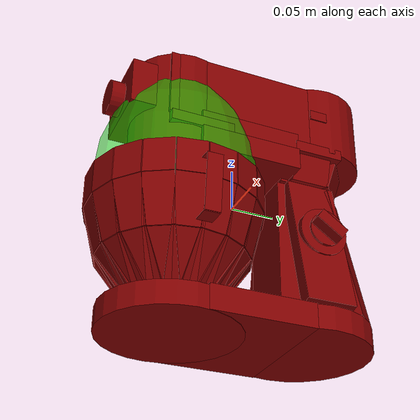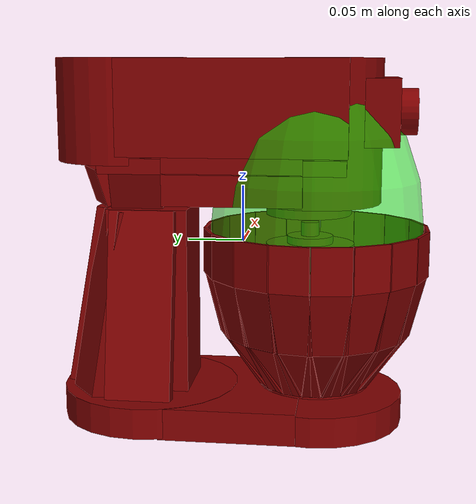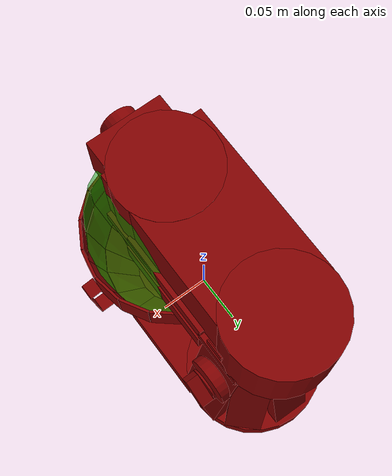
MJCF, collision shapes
<?xml version='1.0' encoding='UTF-8'?>
<mujoco model="model">
  <option timestep="0.002" gravity="0.0 0.0 -9.81"/>
  <compiler angle="radian"/>
  <asset>
    <mesh file="visuals/blender.obj" name="blender_vis"/>
    <mesh file="visuals/bowl.obj" name="bowl_vis"/>
    <mesh file="visuals/button_head_lock.obj" name="button_head_lock_vis"/>
    <mesh file="visuals/head.obj" name="head_vis"/>
    <mesh file="visuals/knob_speed.obj" name="knob_speed_vis"/>
    <mesh file="visuals/Body001.obj" name="Body001_vis"/>
    <texture file="visuals/T_BC001.png" name="Body001_material" type="2d"/>
    <material name="Body001_material" rgba="1 1 1 1.0" texture="Body001_material" shininess="0.4472135901451111" specular="0.3103448502657381"/>
    <texture file="visuals/T_BC001.png" name="bowl_material" type="2d"/>
    <material name="bowl_material" rgba="1 1 1 1.0" texture="bowl_material" shininess="1" specular="1"/>
    <texture file="visuals/T_BC001.png" name="head_material" type="2d"/>
    <material name="head_material" rgba="1 1 1 1.0" texture="head_material" shininess="0.4472135901451111" specular="0.3103448502657381"/>
    <texture file="visuals/T_BC001.png" name="blender_material" type="2d"/>
    <material name="blender_material" rgba="1 1 1 1.0" texture="blender_material" shininess="1" specular="1"/>
    <texture file="visuals/T_BC001.png" name="button_head_lock_material" type="2d"/>
    <material name="button_head_lock_material" rgba="1 1 1 1.0" texture="button_head_lock_material" shininess="0.4472135901451111" specular="0.3103448502657381"/>
    <texture file="visuals/T_BC001.png" name="knob_speed_material" type="2d"/>
    <material name="knob_speed_material" rgba="1 1 1 1.0" texture="knob_speed_material" shininess="0.4472135901451111" specular="0.3103448502657381"/>
  </asset>
  <default>
    <default class="visual">
      <geom conaffinity="0" contype="0" group="1" type="mesh"/>
    </default>
    <default class="collision">
      <geom group="0" rgba="0.5 0 0 0.5"/>
    </default>
    <default class="spawn">
      <geom group="0" rgba="1 1 1 0.5" contype="0" conaffinity="0"/>
      <site group="0" rgba="1 1 1 0.5"/>
    </default>
    <default class="region">
      <geom group="1" conaffinity="0" contype="0" rgba="0 1 0 0"/>
    </default>
  </default>
  <worldbody>
    <body>
      <body name="object">
        <geom mesh="Body001_vis" type="mesh" solimp="0.998 0.998 0.001" solref="0.001 1" friction="0.95 0.3 0.1" class="visual" material="Body001_material"/>
        <geom type="cylinder" pos="-0.007960788905620575 -0.06684844195842743 -0.14681977033615112" size="0.07800706475973129 0.01318493764847517" quat="1.0 0.0 0.0 0.0" class="collision"/>
        <geom type="cylinder" pos="-0.010320175439119339 0.08387935161590576 -0.14481329917907715" size="0.07943037897348404 0.013425509445369244" quat="1.0 0.0 0.0 0.0" class="collision"/>
        <geom type="box" pos="-0.008257637731730938 0.004917993675917387 -0.14560163021087646" size="0.07702770084142685 0.05912737920880318 0.013953768648207188" quat="1.0 0.0 0.0 0.0" class="collision"/>
        <geom type="box" pos="-0.007382966578006744 0.08040105551481247 -0.049021538347005844" size="0.03387362137436867 0.03569832071661949 0.08175280690193176" quat="1.0 0.0 0.0 0.0" class="collision"/>
        <geom type="box" pos="0.043997276574373245 0.08232957124710083 -0.049021538347005844" size="0.007892224937677383 0.0284084752202034 0.08175291121006012" quat="0.9942047595977783 0.0 -0.10750293731689453 0.0" class="collision"/>
        <geom type="box" pos="-0.0424405038356781 0.11863749474287033 -0.049416765570640564" size="0.007892224006354809 0.019647125154733658 0.08175291121006012" quat="0.8977482914924622 0.04135078191757202 0.08289728313684464 -0.4306578040122986" class="collision"/>
        <geom type="box" pos="-0.008531877771019936 0.13365358114242554 -0.04846421256661415" size="0.007801813073456287 0.021083414554595947 0.0817185640335083" quat="0.6972964406013489 0.06290378421545029 0.0665663555264473 -0.7109076380729675" class="collision"/>
        <geom type="box" pos="-0.058235131204128265 0.08232957124710083 -0.04805427044630051" size="0.007892224937677383 0.0284084752202034 0.08175291121006012" quat="0.9954656958580017 0.0 0.09512124955654144 0.0" class="collision"/>
        <geom type="box" pos="0.029251210391521454 0.12137157469987869 -0.052789293229579926" size="0.007801810745149851 0.02074163220822811 0.08171853423118591" quat="0.38455402851104736 0.0907943993806839 0.026380907744169235 -0.9182475805282593" class="collision"/>
        <geom type="cylinder" pos="0.04883949086070061 0.08365180343389511 -0.03870346397161484" size="0.02780371904373169 0.008603918366134167" quat="0.7071068286895752 -4.750302551315144e-08 0.7071067094802856 4.7503014855010406e-08" class="collision"/>
        <body name="bowl">
          <geom mesh="bowl_vis" type="mesh" solimp="0.998 0.998 0.001" solref="0.001 1" friction="0.95 0.3 0.1" class="visual" material="bowl_material"/>
          <geom type="cylinder" pos="-0.007204422727227211 -0.06600315123796463 -0.12682124972343445" size="0.04953110218048096 0.0009693617466837168" quat="1.0 0.0 0.0 0.0" class="collision"/>
          <geom type="box" pos="-0.007204423658549786 -0.16291368007659912 -0.004126019775867462" size="0.016662562265992165 0.0014463496627286077 0.019679084420204163" quat="1.0 0.0 0.0 0.0" class="collision"/>
          <geom type="box" pos="-0.007204422727227211 -0.1549758017063141 -0.050037600100040436" size="0.016662564128637314 0.0014463495463132858 0.028331073001027107" quat="0.9920241832733154 0.12604783475399017 2.798823836088293e-17 -4.290578964756348e-24" class="collision"/>
          <geom type="box" pos="-0.007204422727227211 -0.1300046741962433 -0.10131621360778809" size="0.016662564128637314 0.001446353504434228 0.029418475925922394" quat="0.9507254958152771 0.3100338578224182 6.884135870845198e-17 -5.768733512754544e-24" class="collision"/>
          <geom type="box" pos="-0.040349774062633514 -0.15706926584243774 -0.004126019775867462" size="0.016662562265992165 0.0014463495463132858 0.019679084420204163" quat="0.9848077297210693 0.0 0.0 -0.17364822328090668" class="collision"/>
          <geom type="box" pos="-0.03763485699892044 -0.14961010217666626 -0.05003759264945984" size="0.016662564128637314 0.0014463495463132858 0.028331076726317406" quat="0.9769530892372131 0.12413285672664642 -0.021887971088290215 -0.17226320505142212" class="collision"/>
          <geom type="box" pos="-0.029094234108924866 -0.1261449158191681 -0.10131621360778809" size="0.016662562265992165 0.0014463536208495498 0.029418474063277245" quat="0.9362818598747253 0.3053237199783325 -0.05383680388331413 -0.16509173810482025" class="collision"/>
          <geom type="box" pos="-0.06949730217456818 -0.14024092257022858 -0.004126019775867462" size="0.016662562265992165 0.0014463496627286077 0.019679084420204163" quat="0.9396926164627075 0.0 0.0 -0.3420201539993286" class="collision"/>
          <geom type="box" pos="-0.06439493596553802 -0.13416016101837158 -0.050037600100040436" size="0.016662564128637314 0.0014463495463132858 0.028331073001027107" quat="0.9321978092193604 0.1184462234377861 -0.04311089217662811 -0.3392921984195709" class="collision"/>
          <geom type="box" pos="-0.04834381490945816 -0.1150311678647995 -0.10131621360778809" size="0.016662564128637314 0.001446353504434228 0.029418475925922394" quat="0.8933897614479065 0.2913365364074707 -0.10603781044483185 -0.3251672387123108" class="collision"/>
          <geom type="box" pos="-0.09113139659166336 -0.11445841938257217 -0.004126019775867462" size="0.016662562265992165 0.0014463496627286077 0.019679084420204163" quat="0.866025447845459 0.0 0.0 -0.4999999701976776" class="collision"/>
          <geom type="box" pos="-0.08425699919462204 -0.11048948764801025 -0.05003759264945984" size="0.016662564128637314 0.0014463495463132858 0.028331076726317406" quat="0.8591181635856628 0.10916060209274292 -0.0630238950252533 -0.49601203203201294" class="collision"/>
          <geom type="box" pos="-0.06263137608766556 -0.09800392389297485 -0.10131621360778809" size="0.016662564128637314 0.001446353504434228 0.029418475925922394" quat="0.8233524560928345 0.26849719882011414 -0.1550169289112091 -0.47536277770996094" class="collision"/>
          <geom type="box" pos="-0.10264264792203903 -0.0828314870595932 -0.004126019775867462" size="0.016662560403347015 0.0014463495463132858 0.019679084420204163" quat="0.7660444378852844 0.0 0.0 -0.6427876353263855" class="collision"/>
          <geom type="box" pos="-0.094825379550457 -0.08145309239625931 -0.050037600100040436" size="0.016662560403347015 0.0014463497791439295 0.028331073001027107" quat="0.7599346041679382 0.09655822813510895 -0.0810219794511795 -0.637660801410675" class="collision"/>
          <geom type="box" pos="-0.07023362815380096 -0.07711690664291382 -0.10131621360778809" size="0.016662562265992165 0.001446353504434228 0.029418475925922394" quat="0.7282979488372803 0.23749971389770508 -0.19928599894046783 -0.6111146211624146" class="collision"/>
          <geom type="box" pos="-0.10264266282320023 -0.049174822866916656 -0.004126019775867462" size="0.016662560403347015 0.0014463495463132858 0.019679084420204163" quat="0.6427876353263855 0.0 0.0 -0.7660444378852844" class="collision"/>
          <geom type="box" pos="-0.094825379550457 -0.05055322125554085 -0.050037600100040436" size="0.016662562265992165 0.0014463495463132858 0.028331073001027107" quat="0.6376608610153198 0.0810219794511795 -0.09655825048685074 -0.7599346041679382" class="collision"/>
          <geom type="box" pos="-0.07023363560438156 -0.05488940700888634 -0.10131621360778809" size="0.016662564128637314 0.001446353504434228 0.029418475925922394" quat="0.6111146211624146 0.19928596913814545 -0.23749974370002747 -0.7282979488372803" class="collision"/>
          <geom type="box" pos="-0.09113139659166336 -0.017547883093357086 -0.004126019775867462" size="0.016662562265992165 0.0014463496627286077 0.019679084420204163" quat="0.4999999701976776 0.0 0.0 -0.866025447845459" class="collision"/>
          <geom type="box" pos="-0.08425699919462204 -0.021516822278499603 -0.05003759264945984" size="0.016662564128637314 0.0014463495463132858 0.028331076726317406" quat="0.4960120618343353 0.06302390247583389 -0.10916060209274292 -0.8591181635856628" class="collision"/>
          <geom type="box" pos="-0.06263136863708496 -0.034002386033535004 -0.10131620615720749" size="0.016662564128637314 0.001446353504434228 0.029418475925922394" quat="0.47536274790763855 0.15501689910888672 -0.26849716901779175 -0.8233524560928345" class="collision"/>
          <geom type="box" pos="-0.06949730962514877 0.008234620094299316 -0.004126019775867462" size="0.016662562265992165 0.0014463496627286077 0.019679084420204163" quat="0.3420201539993286 0.0 0.0 -0.9396926164627075" class="collision"/>
          <geom type="box" pos="-0.06439494341611862 0.002153851091861725 -0.05003758519887924" size="0.016662564128637314 0.0014463495463132858 0.028331076726317406" quat="0.3392922580242157 0.04311088100075722 -0.11844616383314133 -0.9321978092193604" class="collision"/>
          <geom type="box" pos="-0.04834381490945816 -0.01697513461112976 -0.10131620615720749" size="0.016662564128637314 0.001446353504434228 0.029418475925922394" quat="0.32516729831695557 0.10603781044483185 -0.2913365364074707 -0.8933897614479065" class="collision"/>
          <geom type="box" pos="-0.04034978151321411 0.025062955915927887 -0.004126019775867462" size="0.016662562265992165 0.0014463496627286077 0.019679084420204163" quat="0.17364822328090668 0.0 0.0 -0.9848077297210693" class="collision"/>
          <geom type="box" pos="-0.037634868174791336 0.017603792250156403 -0.05003759264945984" size="0.016662564128637314 0.0014463495463132858 0.028331076726317406" quat="0.1722632348537445 0.021887974813580513 -0.12413285672664642 -0.9769530892372131" class="collision"/>
          <geom type="box" pos="-0.029094241559505463 -0.005861387588083744 -0.10131620615720749" size="0.016662564128637314 0.0014463536208495498 0.029418475925922394" quat="0.16509179770946503 0.05383681133389473 -0.30532369017601013 -0.9362818598747253" class="collision"/>
          <geom type="box" pos="-0.007204413414001465 0.03090737760066986 -0.004126019775867462" size="0.016662562265992165 0.0014463496627286077 0.019679084420204163" quat="1.9470718370939721e-07 0.0 0.0 1.0" class="collision"/>
          <geom type="box" pos="-0.007204415276646614 0.022969499230384827 -0.05003758519887924" size="0.016662564128637314 0.0014463495463132858 0.028331076726317406" quat="1.9315423571697465e-07 2.4542408993966092e-08 0.1260477751493454 0.9920241832733154" class="collision"/>
          <geom type="box" pos="-0.007204417139291763 -0.0020016219932585955 -0.10131621360778809" size="0.016662564128637314 0.001446353504434228 0.029418475925922394" quat="1.8511309463065118e-07 6.036582078650099e-08 0.3100338578224182 0.9507254958152771" class="collision"/>
          <geom type="box" pos="0.025940952822566032 0.02506294846534729 -0.004126019775867462" size="0.016662562265992165 0.0014463496627286077 0.019679084420204163" quat="0.17364844679832458 0.0 0.0 0.9848077297210693" class="collision"/>
          <geom type="box" pos="0.023226039484143257 0.017603784799575806 -0.05003759264945984" size="0.016662564128637314 0.0014463495463132858 0.028331074863672256" quat="0.17226333916187286 0.021887999027967453 0.12413287907838821 0.9769530892372131" class="collision"/>
          <geom type="box" pos="0.014685405418276787 -0.005861395038664341 -0.10131620615720749" size="0.016662564128637314 0.001446353504434228 0.029418474063277245" quat="0.16509202122688293 0.0538368858397007 0.30532366037368774 0.9362818598747253" class="collision"/>
          <geom type="box" pos="0.05508847534656525 0.008234605193138123 -0.004126019775867462" size="0.016662562265992165 0.0014463495463132858 0.019679084420204163" quat="0.34202027320861816 0.0 0.0 0.9396925568580627" class="collision"/>
          <geom type="box" pos="0.049986109137535095 0.002153851091861725 -0.050037600100040436" size="0.016662564128637314 0.0014463495463132858 0.028331074863672256" quat="0.33929237723350525 0.0431109182536602 0.1184462457895279 0.9321977496147156" class="collision"/>
          <geom type="box" pos="0.033934980630874634 -0.01697513461112976 -0.10131621360778809" size="0.016662564128637314 0.0014463536208495498 0.029418475925922394" quat="0.32516738772392273 0.10603785514831543 0.2913365066051483 0.8933897018432617" class="collision"/>
          <geom type="box" pos="0.07672256231307983 -0.01754789799451828 -0.004126019775867462" size="0.016662562265992165 0.0014463496627286077 0.019679084420204163" quat="0.5000000596046448 0.0 0.0 0.8660253882408142" class="collision"/>
          <geom type="box" pos="0.06984815746545792 -0.021516837179660797 -0.05003758519887924" size="0.016662564128637314 0.0014463495463132858 0.028331076726317406" quat="0.4960121512413025 0.06302390247583389 0.10916056483983994 0.8591181039810181" class="collision"/>
          <geom type="box" pos="0.048222534358501434 -0.0340023934841156 -0.10131620615720749" size="0.016662564128637314 0.0014463536208495498 0.029418475925922394" quat="0.4753628373146057 0.15501689910888672 0.2684970796108246 0.8233524560928345" class="collision"/>
          <geom type="box" pos="0.0882338210940361 -0.049174822866916656 -0.004126019775867462" size="0.016662560403347015 0.0014463495463132858 0.019679084420204163" quat="0.6427876353263855 0.0 0.0 0.7660444378852844" class="collision"/>
          <geom type="box" pos="0.08041652292013168 -0.05055321753025055 -0.05003758519887924" size="0.016662562265992165 0.0014463495463132858 0.028331076726317406" quat="0.6376608610153198 0.08102192729711533 0.09655817598104477 0.7599346041679382" class="collision"/>
          <geom type="box" pos="0.055824778974056244 -0.05488940328359604 -0.10131620615720749" size="0.016662564128637314 0.0014463536208495498 0.029418475925922394" quat="0.6111146211624146 0.1992858499288559 0.23749960958957672 0.728298008441925" class="collision"/>
          <geom type="box" pos="0.08823380619287491 -0.0828314870595932 -0.004126019775867462" size="0.016662560403347015 0.0014463495463132858 0.019679084420204163" quat="0.7660444378852844 0.0 0.0 0.6427876353263855" class="collision"/>
          <geom type="box" pos="0.08041653782129288 -0.08145308494567871 -0.05003758519887924" size="0.016662562265992165 0.0014463495463132858 0.028331076726317406" quat="0.7599346041679382 0.09655820578336716 0.08102195709943771 0.6376608610153198" class="collision"/>
          <geom type="box" pos="0.055824778974056244 -0.07711689919233322 -0.10131620615720749" size="0.016662562265992165 0.0014463536208495498 0.029418475925922394" quat="0.7282981276512146 0.2374996691942215 0.19928580522537231 0.6111144423484802" class="collision"/>
          <geom type="box" pos="0.07672253996133804 -0.11445844918489456 -0.004126019775867462" size="0.016662562265992165 0.0014463496627286077 0.019679084420204163" quat="0.8660256266593933 0.0 0.0 0.49999961256980896" class="collision"/>
          <geom type="box" pos="0.06984813511371613 -0.11048950254917145 -0.05003758519887924" size="0.016662564128637314 0.0014463495463132858 0.028331076726317406" quat="0.8591182827949524 0.10916059464216232 0.06302385777235031 0.49601179361343384" class="collision"/>
          <geom type="box" pos="0.04822251945734024 -0.09800393879413605 -0.10131620615720749" size="0.016662564128637314 0.001446353504434228 0.029418475925922394" quat="0.823352575302124 0.26849716901779175 0.15501683950424194 0.4753625690937042" class="collision"/>
          <geom type="box" pos="0.05508843809366226 -0.14024093747138977 -0.004126019775867462" size="0.016662562265992165 0.0014463496627286077 0.019679084420204163" quat="0.9396926760673523 0.0 0.0 0.34202003479003906" class="collision"/>
          <geom type="box" pos="0.04998607188463211 -0.13416016101837158 -0.05003758519887924" size="0.016662564128637314 0.001446349429897964 0.028331076726317406" quat="0.9321978092193604 0.11844618618488312 0.043110866099596024 0.33929213881492615" class="collision"/>
          <geom type="box" pos="0.033934950828552246 -0.1150311827659607 -0.10131620615720749" size="0.016662564128637314 0.001446353504434228 0.029418475925922394" quat="0.8933898210525513 0.2913364768028259 0.10603776574134827 0.325167179107666" class="collision"/>
          <geom type="box" pos="0.025940904393792152 -0.15706926584243774 -0.004126019775867462" size="0.016662562265992165 0.0014463496627286077 0.019679084420204163" quat="0.9848077893257141 0.0 0.0 0.17364807426929474" class="collision"/>
          <geom type="box" pos="0.023225996643304825 -0.14961010217666626 -0.05003759264945984" size="0.016662564128637314 0.0014463495463132858 0.028331076726317406" quat="0.9769530892372131 0.12413285672664642 0.02188795991241932 0.17226308584213257" class="collision"/>
          <geom type="box" pos="0.014685375615954399 -0.1261449158191681 -0.10131621360778809" size="0.016662565991282463 0.001446353504434228 0.029418475925922394" quat="0.9362818598747253 0.3053237497806549 0.05383677780628204 0.1650916188955307" class="collision"/>
          <geom type="box" pos="0.10360876470804214 -0.06524024158716202 -0.03953292965888977" size="0.00870614591985941 0.0006165413651615381 0.031997792422771454" quat="0.7063024044036865 -0.033717237412929535 0.03371724113821983 -0.7063024640083313" class="collision"/>
          <geom type="box" pos="0.0994282215833664 -0.06524024903774261 -0.006605442613363266" size="0.00870614591985941 0.00061654148157686 0.0070522683672606945" quat="0.4608078896999359 -0.536335825920105 0.5363358855247498 -0.460807740688324" class="collision"/>
          <geom type="box" pos="0.08988333493471146 -0.06524024158716202 -0.07114682346582413" size="0.00870614591985941 0.0006165415397845209 0.010630435310304165" quat="0.4873865246772766 -0.5123030543327332 0.5123031139373779 -0.4873863756656647" class="collision"/>
          <geom name="reg_bowl" type="ellipsoid" pos="-0.007204422727227211 -0.06600315123796463 0.014971382915973663" size="0.0923565924167633 0.09411651641130447 0.13943728804588318" rgba="0 1 0 0.5" class="region"/>
        </body>
        <body name="head">
          <joint axis="-1.0 0.0 0.0" pos="-0.007897231727838516 0.1340997964143753 0.028583301231265068" limited="true" name="head_joint" range="0.0 1.5707963267948966" type="hinge" damping="1" frictionloss="1" armature=".01" stiffness="0.05"/>
          <geom mesh="head_vis" type="mesh" solimp="0.998 0.998 0.001" solref="0.001 1" friction="0.95 0.3 0.1" class="visual" material="head_material"/>
          <geom type="box" pos="-0.011067301034927368 0.003330816514790058 0.12151413410902023" size="0.05580741539597511 0.09693325310945511 0.04065350815653801" quat="1.0 0.0 0.0 0.0" class="collision"/>
          <geom type="cylinder" pos="-0.007960788905620575 0.10533460974693298 0.11810024827718735" size="0.05888476222753525 0.044684380292892456" quat="1.0 0.0 0.0 0.0" class="collision"/>
          <geom type="cylinder" pos="-0.007960788905620575 -0.06684844195842743 0.10018188506364822" size="0.05546166002750397 0.062283482402563095" quat="1.0 0.0 0.0 0.0" class="collision"/>
          <geom type="box" pos="-0.0073587168008089066 0.0022604581899940968 0.05343588441610336" size="0.05951599404215813 0.05912737920880318 0.013261141255497932" quat="1.0 0.0 0.0 0.0" class="collision"/>
          <geom type="box" pos="-0.008372576907277107 0.002260460751131177 0.07779663056135178" size="0.058369483798742294 0.0591273196041584 0.010310162790119648" quat="1.0 0.0 0.0 0.0" class="collision"/>
          <geom type="cylinder" pos="-0.007960788905620575 -0.05937452241778374 0.03466175124049187" size="0.03752787783741951 0.007284394931048155" quat="1.0 0.0 0.0 0.0" class="collision"/>
          <geom type="box" pos="-0.0073587168008089066 -0.12096917629241943 0.11764436960220337" size="0.04213531315326691 0.01460898295044899 0.028308404609560966" quat="1.0 0.0 0.0 0.0" class="collision"/>
          <geom type="cylinder" pos="-0.007960788905620575 -0.14331141114234924 0.11712028831243515" size="0.02004116401076317 0.007942813448607922" quat="0.7071068286895752 -0.7071067690849304 -1.5700922994638892e-16 5.926933650839829e-24" class="collision"/>
          <geom type="box" pos="-0.0073587168008089066 0.08141055703163147 0.05414300039410591" size="0.03236949443817139 0.030743412673473358 0.017058735713362694" quat="1.0 0.0 0.0 0.0" class="collision"/>
          <geom type="cylinder" pos="-0.007960788905620575 -0.060793690383434296 0.025373069569468498" size="0.011341221630573273 0.0027488265186548233" quat="1.0 0.0 0.0 0.0" class="collision"/>
          <geom type="box" pos="0.03316013887524605 0.08265221118927002 0.05414300411939621" size="0.007447761483490467 0.022549008950591087 0.017058733850717545" quat="0.9883102178573608 0.0 0.1524564027786255 0.0" class="collision"/>
          <geom type="box" pos="0.017389897257089615 0.11667884886264801 0.05414300411939621" size="0.007447761949151754 0.022549008950591087 0.017058733850717545" quat="0.8785291910171509 -0.069834403693676 0.13552159070968628 0.452706903219223" class="collision"/>
          <geom type="box" pos="-0.025258183479309082 0.12136368453502655 0.05414300411939621" size="0.007447761483490467 0.022549008950591087 0.017058733850717545" quat="0.5110111832618713 -0.1304953247308731 0.07882841676473618 0.8459460139274597" class="collision"/>
          <geom type="box" pos="-0.048665136098861694 0.08540646731853485 0.05414300411939621" size="0.007447761483490467 0.022549008950591087 0.017058733850717545" quat="0.008073309436440468 0.15245124697685242 0.0012453856179490685 -0.9882772564888" class="collision"/>
          <geom type="box" pos="-0.0073587168008089066 -0.05575251206755638 0.072968028485775" size="0.05736022815108299 0.03685789555311203 0.006563880015164614" quat="1.0 0.0 0.0 0.0" class="collision"/>
          <geom type="box" pos="-0.006925827823579311 0.0878300815820694 0.072968028485775" size="0.05736023187637329 0.029091166332364082 0.006563881412148476" quat="1.0 0.0 0.0 0.0" class="collision"/>
          <body name="blender">
            <joint axis="0.0 0.0 1.0" pos="-0.0068615153431892395 -0.06079823896288872 -0.0263864453881979" limited="false" name="blender_joint" range="0 360" type="hinge" damping="1" frictionloss="1" armature=".01" stiffness="0.05"/>
            <geom mesh="blender_vis" type="mesh" solimp="0.998 0.998 0.001" solref="0.001 1" friction="0.95 0.3 0.1" class="visual" material="blender_material"/>
            <geom type="cylinder" pos="-0.0070564039051532745 -0.06078915297985077 -0.033096544444561005" size="0.03922392427921295 0.03408218175172806" quat="1.0 0.0 0.0 0.0" class="collision"/>
            <geom type="cylinder" pos="-0.0070564039051532745 -0.06078915297985077 0.003046870231628418" size="0.020283741876482964 0.004735451657325029" quat="1.0 0.0 0.0 0.0" class="collision"/>
            <geom type="cylinder" pos="-0.0070564039051532745 -0.06078915297985077 0.013130497187376022" size="0.007982873357832432 0.006899514701217413" quat="1.0 0.0 0.0 0.0" class="collision"/>
          </body>
          <body name="button_head_lock">
            <joint axis="-1.0 0.0 0.0" pos="0.05169231817126274 0.0877847969532013 0.11918672919273376" limited="true" name="button_head_lock_joint" range="0.0 0.0015" type="slide" damping="1" frictionloss="1" armature=".01" stiffness="0.05"/>
            <geom mesh="button_head_lock_vis" type="mesh" solimp="0.998 0.998 0.001" solref="0.001 1" friction="0.95 0.3 0.1" class="visual" material="button_head_lock_material"/>
            <geom class="collision" type="box" pos="0.05301794409751892 0.0877847969532013 0.11918672919273376" size="0.0006960639148019254 0.010689658112823963 0.006097411271184683" quat="1.0 0.0 0.0 0.0" name="button_head_lock_main"/>
          </body>
        </body>
        <body name="knob_speed">
          <joint axis="-1.0 0.0 0.0" pos="0.06816989183425903 0.08365180343389511 -0.03870345652103424" limited="true" name="knob_speed_joint" range="0.0 4.886921905584122" type="hinge" damping="0.05" armature="0.001"/>
          <geom mesh="knob_speed_vis" type="mesh" solimp="0.998 0.998 0.001" solref="0.001 1" friction="0.95 0.3 0.1" class="visual" material="knob_speed_material"/>
          <geom type="cylinder" pos="0.06144864112138748 0.08365180343389511 -0.03870346024632454" size="0.01900840550661087 0.0013273167423903942" quat="0.70710688829422 -4.7503014855010406e-08 0.7071066498756409 4.750300064415569e-08" class="collision"/>
          <geom class="collision" type="box" pos="0.07016842067241669 0.08365180343389511 -0.03870345652103424" size="0.007372028194367886 0.01744014210999012 0.0067107356153428555" quat="0.9537169337272644 -0.30070576071739197 -6.67700918371743e-17 6.66540330472668e-25" name="knob_speed_main"/>
        </body>
        <geom class="region" name="reg_main" type="box" pos="-0.007787708193063736 0.00717298686504364 0.0" size="0.07875606215000153 0.15929810500144959 0.16379304027557373"/>
      </body>
    </body>
  </worldbody>
  <actuator>
    <motor name="head_joint_actuator" joint="head_joint" gear="10"/>
    <motor name="knob_speed_joint_actuator" joint="knob_speed_joint" gear="10"/>
    <motor name="blender_joint_actuator" joint="blender_joint" gear="10"/>
    <motor name="button_head_lock_joint_actuator" joint="button_head_lock_joint" gear="0.1"/>
  </actuator>
</mujoco>
